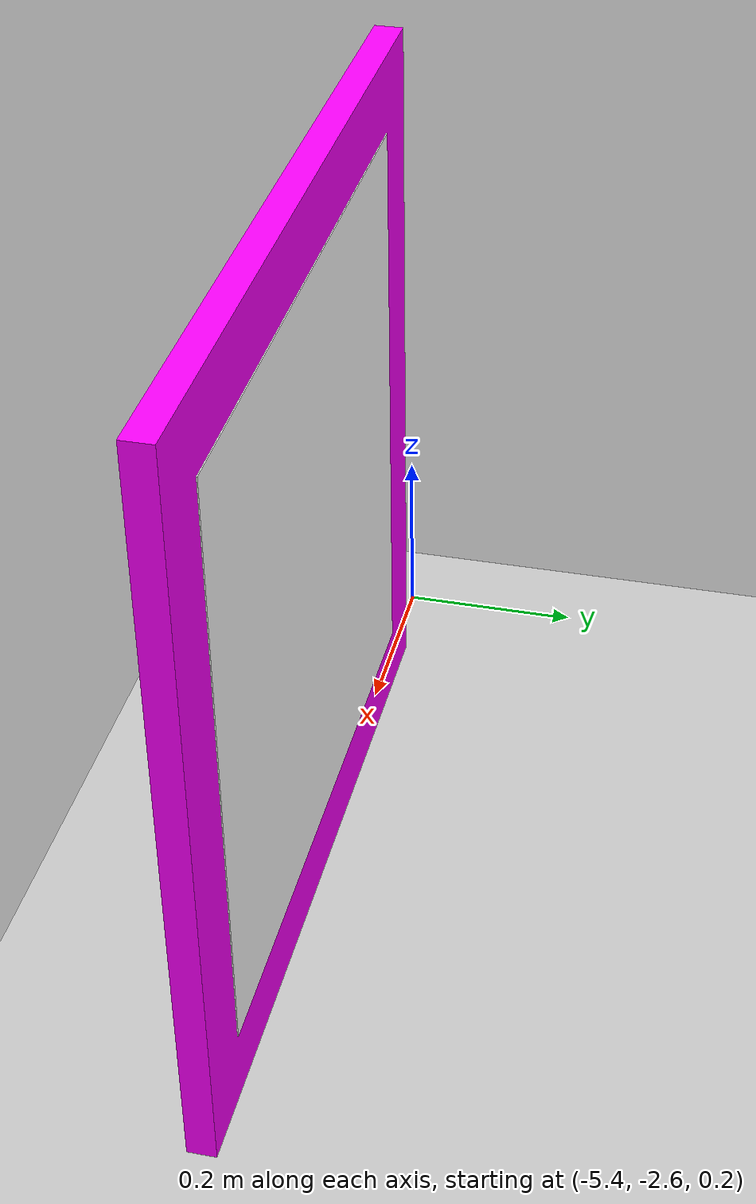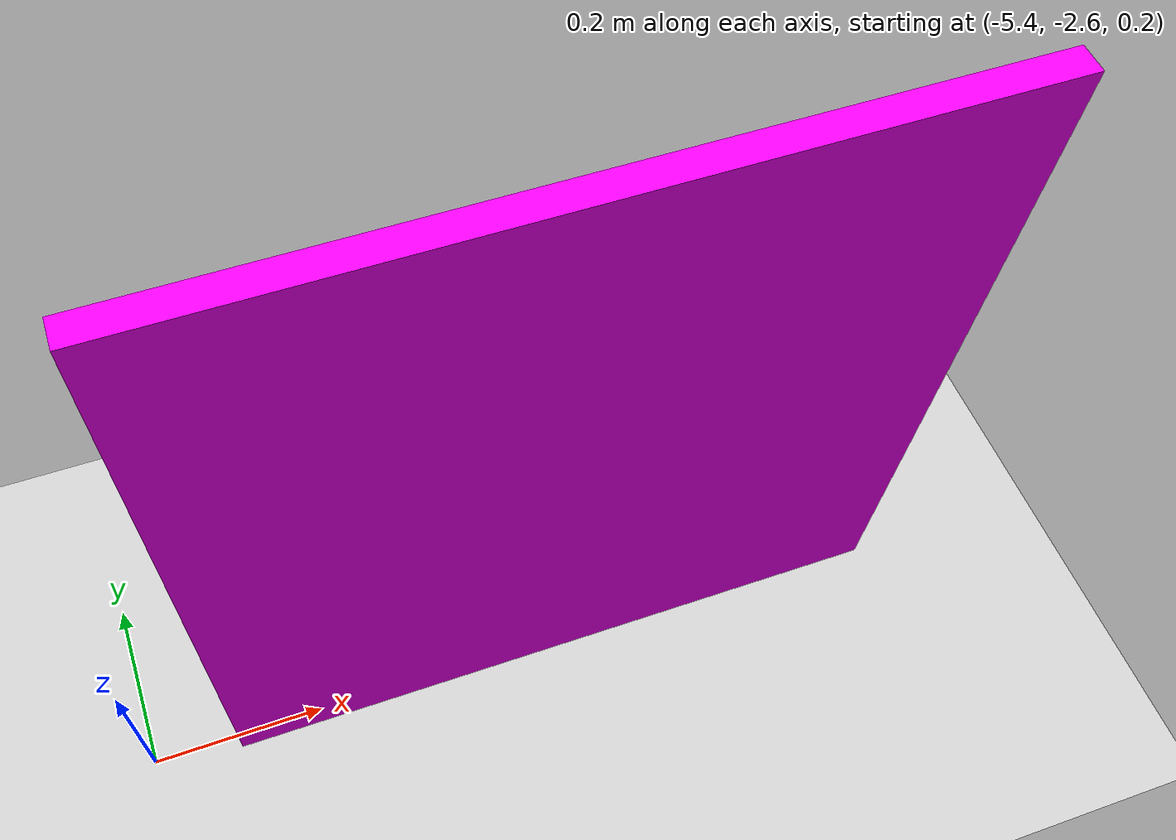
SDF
<?xml version="1.0"?>
<!-- go2_spawn_yaw: 1.5708 -->
<sdf version="1.9">
  <world name="quadruped_maze11">
    <physics name="1ms" type="ignored">
      <max_step_size>0.001</max_step_size>
      <real_time_factor>1.0</real_time_factor>
    </physics>

    <plugin filename="gz-sim-physics-system"
            name="gz::sim::systems::Physics"/>
    <plugin filename="gz-sim-user-commands-system"
            name="gz::sim::systems::UserCommands"/>
    <plugin filename="gz-sim-scene-broadcaster-system"
            name="gz::sim::systems::SceneBroadcaster"/>
    <plugin filename="gz-sim-sensors-system"
            name="gz::sim::systems::Sensors">
      <render_engine>ogre2</render_engine>
    </plugin>
    <plugin filename="gz-sim-contact-system"
            name="gz::sim::systems::Contact"/>

    <scene>
      <ambient>1 1 1 1</ambient>
      <background>0.3 0.7 0.9 1</background>
      <shadows>false</shadows>
    </scene>

    <light type="directional" name="sun">
      <pose>0 0 10 0 0 0</pose>
      <diffuse>0.8 0.8 0.8 1</diffuse>
      <specular>0.2 0.2 0.2 1</specular>
      <direction>-0.5 0.1 -0.9</direction>
    </light>

    <model name="ground_plane">
      <static>true</static>
      <link name="link">
        <collision name="collision">
          <geometry>
            <plane><normal>0 0 1</normal><size>100 100</size></plane>
          </geometry>
        </collision>
        <visual name="visual">
          <geometry>
            <plane><normal>0 0 1</normal><size>100 100</size></plane>
          </geometry>
          <material>
            <ambient>0.8 0.8 0.8 1</ambient>
            <diffuse>0.8 0.8 0.8 1</diffuse>
          </material>
        </visual>
      </link>
    </model>

    <model name="labirinto">
      <static>true</static>
      <pose>-11.672 11.649 0 0 0 0</pose>
      <link name="link">
        <collision name="collision">
          <geometry>
            <mesh>
              <scale>0.002 0.002 0.002</scale>
              <uri>model://maze11/meshes/maze11.stl</uri>
            </mesh>
          </geometry>
        </collision>
        <visual name="visual">
          <geometry>
            <mesh>
              <scale>0.002 0.002 0.002</scale>
              <uri>model://maze11/meshes/maze11.stl</uri>
            </mesh>
          </geometry>
          <material>
            <ambient>0.72 0.70 0.66 1</ambient>
            <diffuse>0.72 0.70 0.66 1</diffuse>
            <specular>0.1 0.1 0.1 1</specular>
          </material>
        </visual>
      </link>
    </model>

    <model name="maze_exit_marker">
      <static>true</static>
      <pose>-4.90 -2.60 0.60 0 0 0</pose>
      <link name="link">
        <visual name="panel">
          <geometry><box><size>0.80 0.03 0.80</size></box></geometry>
          <material>
            <ambient>1.0 0.0 1.0 1.0</ambient>
            <diffuse>1.0 0.0 1.0 1.0</diffuse>
            <emissive>0.35 0.0 0.35 1.0</emissive>
          </material>
        </visual>
        <visual name="tag">
          <pose>0 0.016 0 0 0 0</pose>
          <geometry><box><size>0.64 0.001 0.64</size></box></geometry>
          <material>
            <ambient>1 1 1 1</ambient>
            <diffuse>1 1 1 1</diffuse>
            <pbr>
              <metal>
                <albedo_map>maze_exit_tag.png</albedo_map>
              </metal>
            </pbr>
          </material>
        </visual>
      </link>
    </model>
  </world>
</sdf>
